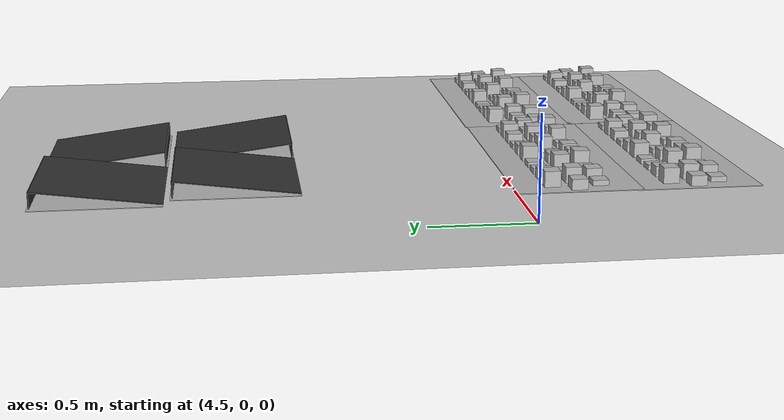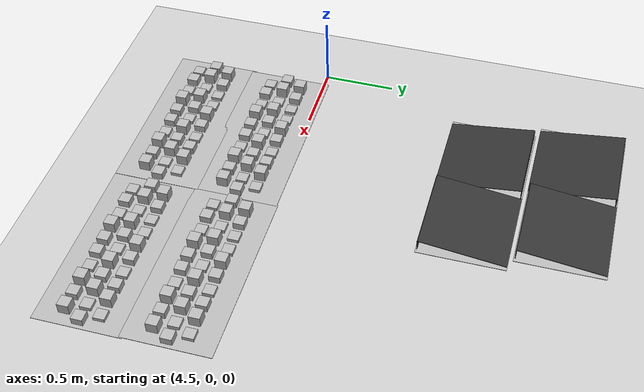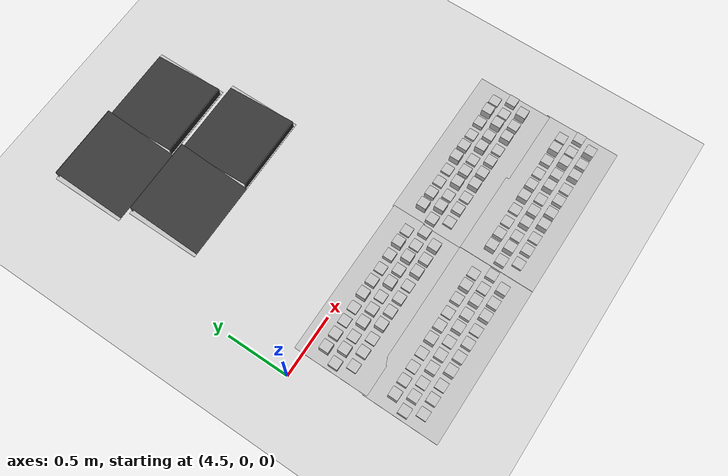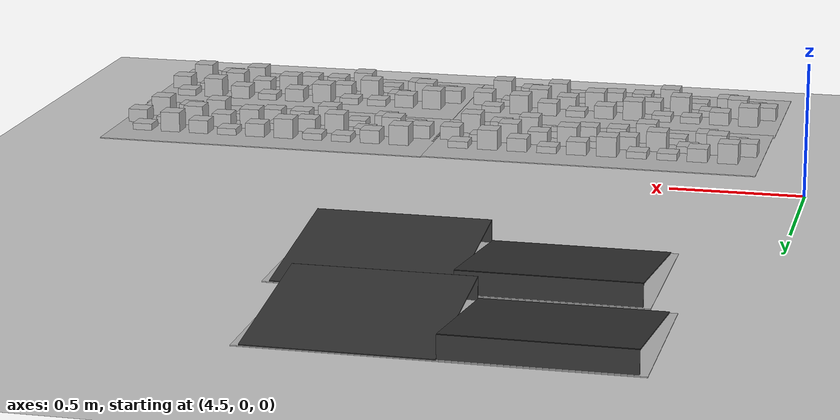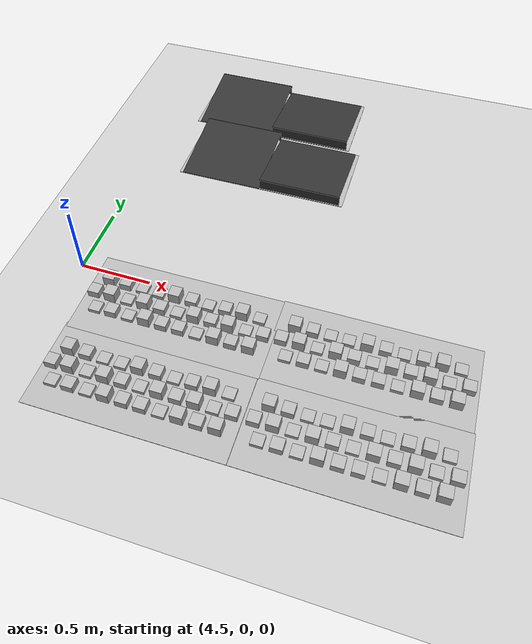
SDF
<sdf version="1.7">
 <world name="default">
  <model name="ground_plane">
   <static>1</static>
   <link name="link">
    <collision name="collision">
     <geometry><plane><normal>0 0 1</normal><size>100 100</size></plane></geometry>
     <surface>
      <contact><collide_bitmask>65535</collide_bitmask></contact>
      <friction><ode><mu>100</mu><mu2>50</mu2></ode></friction>
     </surface>
    </collision>
    <visual name="visual">
     <cast_shadows>0</cast_shadows>
     <geometry><plane><normal>0 0 1</normal><size>100 100</size></plane></geometry>
     <material>
      <script><uri>file://media/materials/scripts/gazebo.material</uri><name>Gazebo/Grey</name></script>
     </material>
    </visual>
   </link>
  </model>
  <model name="frc2016_roughterrain_5">
   <static>1</static>
   <link name="link">
    <visual name="platform">
     <pose>0 0 0.08269 0 -0 0</pose>
     <geometry><box><size>1.27 0.5969 0.003175</size></box></geometry>
    </visual>
    <collision name="platform">
     <pose>0 0 0.08269 0 -0 0</pose>
     <geometry><box><size>1.27 0.5969 0.003175</size></box></geometry>
    </collision>
    <visual name="row1_block1_sm">
     <pose>0.51435 0.1143 0.09698 0 -0 0</pose>
     <geometry><box><size>0.0762 0.0762 0.0254</size></box></geometry>
    </visual>
    <collision name="row1_block1_sm">
     <pose>0.51435 0.1143 0.09698 0 -0 0</pose>
     <geometry><box><size>0.0762 0.0762 0.0254</size></box></geometry>
    </collision>
    <visual name="row1_block2_lg">
     <pose>0.40005 0.1143 0.12238 0 -0 0</pose>
     <geometry><box><size>0.0762 0.0762 0.0762</size></box></geometry>
    </visual>
    <collision name="row1_block2_lg">
     <pose>0.40005 0.1143 0.12238 0 -0 0</pose>
     <geometry><box><size>0.0762 0.0762 0.0762</size></box></geometry>
    </collision>
    <visual name="row1_block3_md">
     <pose>0.28575 0.1143 0.10968 0 -0 0</pose>
     <geometry><box><size>0.0762 0.0762 0.0508</size></box></geometry>
    </visual>
    <collision name="row1_block3_md">
     <pose>0.28575 0.1143 0.10968 0 -0 0</pose>
     <geometry><box><size>0.0762 0.0762 0.0508</size></box></geometry>
    </collision>
    <visual name="row1_block4_sm">
     <pose>0.17145 0.1143 0.09698 0 -0 0</pose>
     <geometry><box><size>0.0762 0.0762 0.0254</size></box></geometry>
    </visual>
    <collision name="row1_block4_sm">
     <pose>0.17145 0.1143 0.09698 0 -0 0</pose>
     <geometry><box><size>0.0762 0.0762 0.0254</size></box></geometry>
    </collision>
    <visual name="row1_block5_md">
     <pose>0.05715 0.1143 0.10968 0 -0 0</pose>
     <geometry><box><size>0.0762 0.0762 0.0508</size></box></geometry>
    </visual>
    <collision name="row1_block5_md">
     <pose>0.05715 0.1143 0.10968 0 -0 0</pose>
     <geometry><box><size>0.0762 0.0762 0.0508</size></box></geometry>
    </collision>
    <visual name="row1_block6_lg">
     <pose>-0.05715 0.1143 0.12238 0 -0 0</pose>
     <geometry><box><size>0.0762 0.0762 0.0762</size></box></geometry>
    </visual>
    <collision name="row1_block6_lg">
     <pose>-0.05715 0.1143 0.12238 0 -0 0</pose>
     <geometry><box><size>0.0762 0.0762 0.0762</size></box></geometry>
    </collision>
    <visual name="row1_block7_sm">
     <pose>-0.17145 0.1143 0.09698 0 -0 0</pose>
     <geometry><box><size>0.0762 0.0762 0.0254</size></box></geometry>
    </visual>
    <collision name="row1_block7_sm">
     <pose>-0.17145 0.1143 0.09698 0 -0 0</pose>
     <geometry><box><size>0.0762 0.0762 0.0254</size></box></geometry>
    </collision>
    <visual name="row1_block8_sm">
     <pose>-0.28575 0.1143 0.09698 0 -0 0</pose>
     <geometry><box><size>0.0762 0.0762 0.0254</size></box></geometry>
    </visual>
    <collision name="row1_block8_sm">
     <pose>-0.28575 0.1143 0.09698 0 -0 0</pose>
     <geometry><box><size>0.0762 0.0762 0.0254</size></box></geometry>
    </collision>
    <visual name="row1_block9_md">
     <pose>-0.40005 0.1143 0.10968 0 -0 0</pose>
     <geometry><box><size>0.0762 0.0762 0.0508</size></box></geometry>
    </visual>
    <collision name="row1_block9_md">
     <pose>-0.40005 0.1143 0.10968 0 -0 0</pose>
     <geometry><box><size>0.0762 0.0762 0.0508</size></box></geometry>
    </collision>
    <visual name="row1_block10_lg">
     <pose>-0.51435 0.1143 0.12238 0 -0 0</pose>
     <geometry><box><size>0.0762 0.0762 0.0762</size></box></geometry>
    </visual>
    <collision name="row1_block10_lg">
     <pose>-0.51435 0.1143 0.12238 0 -0 0</pose>
     <geometry><box><size>0.0762 0.0762 0.0762</size></box></geometry>
    </collision>
    <visual name="row2_block1_md">
     <pose>0.5715 0 0.10968 0 -0 0</pose>
     <geometry><box><size>0.0762 0.0762 0.0508</size></box></geometry>
    </visual>
    <collision name="row2_block1_md">
     <pose>0.5715 0 0.10968 0 -0 0</pose>
     <geometry><box><size>0.0762 0.0762 0.0508</size></box></geometry>
    </collision>
    <visual name="row2_block2_sm">
     <pose>0.4572 0 0.09698 0 -0 0</pose>
     <geometry><box><size>0.0762 0.0762 0.0254</size></box></geometry>
    </visual>
    <collision name="row2_block2_sm">
     <pose>0.4572 0 0.09698 0 -0 0</pose>
     <geometry><box><size>0.0762 0.0762 0.0254</size></box></geometry>
    </collision>
    <visual name="row2_block3_lg">
     <pose>0.3429 0 0.12238 0 -0 0</pose>
     <geometry><box><size>0.0762 0.0762 0.0762</size></box></geometry>
    </visual>
    <collision name="row2_block3_lg">
     <pose>0.3429 0 0.12238 0 -0 0</pose>
     <geometry><box><size>0.0762 0.0762 0.0762</size></box></geometry>
    </collision>
    <visual name="row2_block4_md">
     <pose>0.2286 0 0.10968 0 -0 0</pose>
     <geometry><box><size>0.0762 0.0762 0.0508</size></box></geometry>
    </visual>
    <collision name="row2_block4_md">
     <pose>0.2286 0 0.10968 0 -0 0</pose>
     <geometry><box><size>0.0762 0.0762 0.0508</size></box></geometry>
    </collision>
    <visual name="row2_block5_lg">
     <pose>0.1143 0 0.12238 0 -0 0</pose>
     <geometry><box><size>0.0762 0.0762 0.0762</size></box></geometry>
    </visual>
    <collision name="row2_block5_lg">
     <pose>0.1143 0 0.12238 0 -0 0</pose>
     <geometry><box><size>0.0762 0.0762 0.0762</size></box></geometry>
    </collision>
    <visual name="row2_block6_sm">
     <pose>0 0 0.09698 0 -0 0</pose>
     <geometry><box><size>0.0762 0.0762 0.0254</size></box></geometry>
    </visual>
    <collision name="row2_block6_sm">
     <pose>0 0 0.09698 0 -0 0</pose>
     <geometry><box><size>0.0762 0.0762 0.0254</size></box></geometry>
    </collision>
    <visual name="row2_block7_md">
     <pose>-0.1143 0 0.10968 0 -0 0</pose>
     <geometry><box><size>0.0762 0.0762 0.0508</size></box></geometry>
    </visual>
    <collision name="row2_block7_md">
     <pose>-0.1143 0 0.10968 0 -0 0</pose>
     <geometry><box><size>0.0762 0.0762 0.0508</size></box></geometry>
    </collision>
    <visual name="row2_block8_lg">
     <pose>-0.2286 0 0.12238 0 -0 0</pose>
     <geometry><box><size>0.0762 0.0762 0.0762</size></box></geometry>
    </visual>
    <collision name="row2_block8_lg">
     <pose>-0.2286 0 0.12238 0 -0 0</pose>
     <geometry><box><size>0.0762 0.0762 0.0762</size></box></geometry>
    </collision>
    <visual name="row2_block9_sm">
     <pose>-0.3429 0 0.09698 0 -0 0</pose>
     <geometry><box><size>0.0762 0.0762 0.0254</size></box></geometry>
    </visual>
    <collision name="row2_block9_sm">
     <pose>-0.3429 0 0.09698 0 -0 0</pose>
     <geometry><box><size>0.0762 0.0762 0.0254</size></box></geometry>
    </collision>
    <visual name="row2_block10_lg">
     <pose>-0.4572 0 0.12238 0 -0 0</pose>
     <geometry><box><size>0.0762 0.0762 0.0762</size></box></geometry>
    </visual>
    <collision name="row2_block10_lg">
     <pose>-0.4572 0 0.12238 0 -0 0</pose>
     <geometry><box><size>0.0762 0.0762 0.0762</size></box></geometry>
    </collision>
    <visual name="row2_block11_md">
     <pose>-0.5715 0 0.10968 0 -0 0</pose>
     <geometry><box><size>0.0762 0.0762 0.0508</size></box></geometry>
    </visual>
    <collision name="row2_block11_md">
     <pose>-0.5715 0 0.10968 0 -0 0</pose>
     <geometry><box><size>0.0762 0.0762 0.0508</size></box></geometry>
    </collision>
    <visual name="row3_block1_lg">
     <pose>0.51435 -0.1143 0.12238 0 -0 0</pose>
     <geometry><box><size>0.0762 0.0762 0.0762</size></box></geometry>
    </visual>
    <collision name="row3_block1_lg">
     <pose>0.51435 -0.1143 0.12238 0 -0 0</pose>
     <geometry><box><size>0.0762 0.0762 0.0762</size></box></geometry>
    </collision>
    <visual name="row3_block2_md">
     <pose>0.40005 -0.1143 0.10968 0 -0 0</pose>
     <geometry><box><size>0.0762 0.0762 0.0508</size></box></geometry>
    </visual>
    <collision name="row3_block2_md">
     <pose>0.40005 -0.1143 0.10968 0 -0 0</pose>
     <geometry><box><size>0.0762 0.0762 0.0508</size></box></geometry>
    </collision>
    <visual name="row3_block3_lg">
     <pose>0.28575 -0.1143 0.12238 0 -0 0</pose>
     <geometry><box><size>0.0762 0.0762 0.0762</size></box></geometry>
    </visual>
    <collision name="row3_block3_lg">
     <pose>0.28575 -0.1143 0.12238 0 -0 0</pose>
     <geometry><box><size>0.0762 0.0762 0.0762</size></box></geometry>
    </collision>
    <visual name="row3_block4_sm">
     <pose>0.17145 -0.1143 0.09698 0 -0 0</pose>
     <geometry><box><size>0.0762 0.0762 0.0254</size></box></geometry>
    </visual>
    <collision name="row3_block4_sm">
     <pose>0.17145 -0.1143 0.09698 0 -0 0</pose>
     <geometry><box><size>0.0762 0.0762 0.0254</size></box></geometry>
    </collision>
    <visual name="row3_block5_md">
     <pose>0.05715 -0.1143 0.10968 0 -0 0</pose>
     <geometry><box><size>0.0762 0.0762 0.0508</size></box></geometry>
    </visual>
    <collision name="row3_block5_md">
     <pose>0.05715 -0.1143 0.10968 0 -0 0</pose>
     <geometry><box><size>0.0762 0.0762 0.0508</size></box></geometry>
    </collision>
    <visual name="row3_block6_md">
     <pose>-0.05715 -0.1143 0.10968 0 -0 0</pose>
     <geometry><box><size>0.0762 0.0762 0.0508</size></box></geometry>
    </visual>
    <collision name="row3_block6_md">
     <pose>-0.05715 -0.1143 0.10968 0 -0 0</pose>
     <geometry><box><size>0.0762 0.0762 0.0508</size></box></geometry>
    </collision>
    <visual name="row3_block7_lg">
     <pose>-0.17145 -0.1143 0.12238 0 -0 0</pose>
     <geometry><box><size>0.0762 0.0762 0.0762</size></box></geometry>
    </visual>
    <collision name="row3_block7_lg">
     <pose>-0.17145 -0.1143 0.12238 0 -0 0</pose>
     <geometry><box><size>0.0762 0.0762 0.0762</size></box></geometry>
    </collision>
    <visual name="row3_block8_sm">
     <pose>-0.28575 -0.1143 0.09698 0 -0 0</pose>
     <geometry><box><size>0.0762 0.0762 0.0254</size></box></geometry>
    </visual>
    <collision name="row3_block8_sm">
     <pose>-0.28575 -0.1143 0.09698 0 -0 0</pose>
     <geometry><box><size>0.0762 0.0762 0.0254</size></box></geometry>
    </collision>
    <visual name="row3_block9_md">
     <pose>-0.40005 -0.1143 0.10968 0 -0 0</pose>
     <geometry><box><size>0.0762 0.0762 0.0508</size></box></geometry>
    </visual>
    <collision name="row3_block9_md">
     <pose>-0.40005 -0.1143 0.10968 0 -0 0</pose>
     <geometry><box><size>0.0762 0.0762 0.0508</size></box></geometry>
    </collision>
    <visual name="row3_block10_sm">
     <pose>-0.51435 -0.1143 0.09698 0 -0 0</pose>
     <geometry><box><size>0.0762 0.0762 0.0254</size></box></geometry>
    </visual>
    <collision name="row3_block10_sm">
     <pose>-0.51435 -0.1143 0.09698 0 -0 0</pose>
     <geometry><box><size>0.0762 0.0762 0.0254</size></box></geometry>
    </collision>
   </link>
   <pose>5.31156 -0.239513 0 0 -0 0</pose>
  </model>
  <model name="frc2016_roughterrain_6">
   <static>1</static>
   <link name="link">
    <visual name="platform">
     <pose>0 0 0.08269 0 -0 0</pose>
     <geometry><box><size>1.27 0.5969 0.003175</size></box></geometry>
    </visual>
    <collision name="platform">
     <pose>0 0 0.08269 0 -0 0</pose>
     <geometry><box><size>1.27 0.5969 0.003175</size></box></geometry>
    </collision>
    <visual name="row1_block1_sm">
     <pose>0.51435 0.1143 0.09698 0 -0 0</pose>
     <geometry><box><size>0.0762 0.0762 0.0254</size></box></geometry>
    </visual>
    <collision name="row1_block1_sm">
     <pose>0.51435 0.1143 0.09698 0 -0 0</pose>
     <geometry><box><size>0.0762 0.0762 0.0254</size></box></geometry>
    </collision>
    <visual name="row1_block2_lg">
     <pose>0.40005 0.1143 0.12238 0 -0 0</pose>
     <geometry><box><size>0.0762 0.0762 0.0762</size></box></geometry>
    </visual>
    <collision name="row1_block2_lg">
     <pose>0.40005 0.1143 0.12238 0 -0 0</pose>
     <geometry><box><size>0.0762 0.0762 0.0762</size></box></geometry>
    </collision>
    <visual name="row1_block3_md">
     <pose>0.28575 0.1143 0.10968 0 -0 0</pose>
     <geometry><box><size>0.0762 0.0762 0.0508</size></box></geometry>
    </visual>
    <collision name="row1_block3_md">
     <pose>0.28575 0.1143 0.10968 0 -0 0</pose>
     <geometry><box><size>0.0762 0.0762 0.0508</size></box></geometry>
    </collision>
    <visual name="row1_block4_sm">
     <pose>0.17145 0.1143 0.09698 0 -0 0</pose>
     <geometry><box><size>0.0762 0.0762 0.0254</size></box></geometry>
    </visual>
    <collision name="row1_block4_sm">
     <pose>0.17145 0.1143 0.09698 0 -0 0</pose>
     <geometry><box><size>0.0762 0.0762 0.0254</size></box></geometry>
    </collision>
    <visual name="row1_block5_md">
     <pose>0.05715 0.1143 0.10968 0 -0 0</pose>
     <geometry><box><size>0.0762 0.0762 0.0508</size></box></geometry>
    </visual>
    <collision name="row1_block5_md">
     <pose>0.05715 0.1143 0.10968 0 -0 0</pose>
     <geometry><box><size>0.0762 0.0762 0.0508</size></box></geometry>
    </collision>
    <visual name="row1_block6_lg">
     <pose>-0.05715 0.1143 0.12238 0 -0 0</pose>
     <geometry><box><size>0.0762 0.0762 0.0762</size></box></geometry>
    </visual>
    <collision name="row1_block6_lg">
     <pose>-0.05715 0.1143 0.12238 0 -0 0</pose>
     <geometry><box><size>0.0762 0.0762 0.0762</size></box></geometry>
    </collision>
    <visual name="row1_block7_sm">
     <pose>-0.17145 0.1143 0.09698 0 -0 0</pose>
     <geometry><box><size>0.0762 0.0762 0.0254</size></box></geometry>
    </visual>
    <collision name="row1_block7_sm">
     <pose>-0.17145 0.1143 0.09698 0 -0 0</pose>
     <geometry><box><size>0.0762 0.0762 0.0254</size></box></geometry>
    </collision>
    <visual name="row1_block8_sm">
     <pose>-0.28575 0.1143 0.09698 0 -0 0</pose>
     <geometry><box><size>0.0762 0.0762 0.0254</size></box></geometry>
    </visual>
    <collision name="row1_block8_sm">
     <pose>-0.28575 0.1143 0.09698 0 -0 0</pose>
     <geometry><box><size>0.0762 0.0762 0.0254</size></box></geometry>
    </collision>
    <visual name="row1_block9_md">
     <pose>-0.40005 0.1143 0.10968 0 -0 0</pose>
     <geometry><box><size>0.0762 0.0762 0.0508</size></box></geometry>
    </visual>
    <collision name="row1_block9_md">
     <pose>-0.40005 0.1143 0.10968 0 -0 0</pose>
     <geometry><box><size>0.0762 0.0762 0.0508</size></box></geometry>
    </collision>
    <visual name="row1_block10_lg">
     <pose>-0.51435 0.1143 0.12238 0 -0 0</pose>
     <geometry><box><size>0.0762 0.0762 0.0762</size></box></geometry>
    </visual>
    <collision name="row1_block10_lg">
     <pose>-0.51435 0.1143 0.12238 0 -0 0</pose>
     <geometry><box><size>0.0762 0.0762 0.0762</size></box></geometry>
    </collision>
    <visual name="row2_block1_md">
     <pose>0.5715 0 0.10968 0 -0 0</pose>
     <geometry><box><size>0.0762 0.0762 0.0508</size></box></geometry>
    </visual>
    <collision name="row2_block1_md">
     <pose>0.5715 0 0.10968 0 -0 0</pose>
     <geometry><box><size>0.0762 0.0762 0.0508</size></box></geometry>
    </collision>
    <visual name="row2_block2_sm">
     <pose>0.4572 0 0.09698 0 -0 0</pose>
     <geometry><box><size>0.0762 0.0762 0.0254</size></box></geometry>
    </visual>
    <collision name="row2_block2_sm">
     <pose>0.4572 0 0.09698 0 -0 0</pose>
     <geometry><box><size>0.0762 0.0762 0.0254</size></box></geometry>
    </collision>
    <visual name="row2_block3_lg">
     <pose>0.3429 0 0.12238 0 -0 0</pose>
     <geometry><box><size>0.0762 0.0762 0.0762</size></box></geometry>
    </visual>
    <collision name="row2_block3_lg">
     <pose>0.3429 0 0.12238 0 -0 0</pose>
     <geometry><box><size>0.0762 0.0762 0.0762</size></box></geometry>
    </collision>
    <visual name="row2_block4_md">
     <pose>0.2286 0 0.10968 0 -0 0</pose>
     <geometry><box><size>0.0762 0.0762 0.0508</size></box></geometry>
    </visual>
    <collision name="row2_block4_md">
     <pose>0.2286 0 0.10968 0 -0 0</pose>
     <geometry><box><size>0.0762 0.0762 0.0508</size></box></geometry>
    </collision>
    <visual name="row2_block5_lg">
     <pose>0.1143 0 0.12238 0 -0 0</pose>
     <geometry><box><size>0.0762 0.0762 0.0762</size></box></geometry>
    </visual>
    <collision name="row2_block5_lg">
     <pose>0.1143 0 0.12238 0 -0 0</pose>
     <geometry><box><size>0.0762 0.0762 0.0762</size></box></geometry>
    </collision>
    <visual name="row2_block6_sm">
     <pose>0 0 0.09698 0 -0 0</pose>
     <geometry><box><size>0.0762 0.0762 0.0254</size></box></geometry>
    </visual>
    <collision name="row2_block6_sm">
     <pose>0 0 0.09698 0 -0 0</pose>
     <geometry><box><size>0.0762 0.0762 0.0254</size></box></geometry>
    </collision>
    <visual name="row2_block7_md">
     <pose>-0.1143 0 0.10968 0 -0 0</pose>
     <geometry><box><size>0.0762 0.0762 0.0508</size></box></geometry>
    </visual>
    <collision name="row2_block7_md">
     <pose>-0.1143 0 0.10968 0 -0 0</pose>
     <geometry><box><size>0.0762 0.0762 0.0508</size></box></geometry>
    </collision>
    <visual name="row2_block8_lg">
     <pose>-0.2286 0 0.12238 0 -0 0</pose>
     <geometry><box><size>0.0762 0.0762 0.0762</size></box></geometry>
    </visual>
    <collision name="row2_block8_lg">
     <pose>-0.2286 0 0.12238 0 -0 0</pose>
     <geometry><box><size>0.0762 0.0762 0.0762</size></box></geometry>
    </collision>
    <visual name="row2_block9_sm">
     <pose>-0.3429 0 0.09698 0 -0 0</pose>
     <geometry><box><size>0.0762 0.0762 0.0254</size></box></geometry>
    </visual>
    <collision name="row2_block9_sm">
     <pose>-0.3429 0 0.09698 0 -0 0</pose>
     <geometry><box><size>0.0762 0.0762 0.0254</size></box></geometry>
    </collision>
    <visual name="row2_block10_lg">
     <pose>-0.4572 0 0.12238 0 -0 0</pose>
     <geometry><box><size>0.0762 0.0762 0.0762</size></box></geometry>
    </visual>
    <collision name="row2_block10_lg">
     <pose>-0.4572 0 0.12238 0 -0 0</pose>
     <geometry><box><size>0.0762 0.0762 0.0762</size></box></geometry>
    </collision>
    <visual name="row2_block11_md">
     <pose>-0.5715 0 0.10968 0 -0 0</pose>
     <geometry><box><size>0.0762 0.0762 0.0508</size></box></geometry>
    </visual>
    <collision name="row2_block11_md">
     <pose>-0.5715 0 0.10968 0 -0 0</pose>
     <geometry><box><size>0.0762 0.0762 0.0508</size></box></geometry>
    </collision>
    <visual name="row3_block1_lg">
     <pose>0.51435 -0.1143 0.12238 0 -0 0</pose>
     <geometry><box><size>0.0762 0.0762 0.0762</size></box></geometry>
    </visual>
    <collision name="row3_block1_lg">
     <pose>0.51435 -0.1143 0.12238 0 -0 0</pose>
     <geometry><box><size>0.0762 0.0762 0.0762</size></box></geometry>
    </collision>
    <visual name="row3_block2_md">
     <pose>0.40005 -0.1143 0.10968 0 -0 0</pose>
     <geometry><box><size>0.0762 0.0762 0.0508</size></box></geometry>
    </visual>
    <collision name="row3_block2_md">
     <pose>0.40005 -0.1143 0.10968 0 -0 0</pose>
     <geometry><box><size>0.0762 0.0762 0.0508</size></box></geometry>
    </collision>
    <visual name="row3_block3_lg">
     <pose>0.28575 -0.1143 0.12238 0 -0 0</pose>
     <geometry><box><size>0.0762 0.0762 0.0762</size></box></geometry>
    </visual>
    <collision name="row3_block3_lg">
     <pose>0.28575 -0.1143 0.12238 0 -0 0</pose>
     <geometry><box><size>0.0762 0.0762 0.0762</size></box></geometry>
    </collision>
    <visual name="row3_block4_sm">
     <pose>0.17145 -0.1143 0.09698 0 -0 0</pose>
     <geometry><box><size>0.0762 0.0762 0.0254</size></box></geometry>
    </visual>
    <collision name="row3_block4_sm">
     <pose>0.17145 -0.1143 0.09698 0 -0 0</pose>
     <geometry><box><size>0.0762 0.0762 0.0254</size></box></geometry>
    </collision>
    <visual name="row3_block5_md">
     <pose>0.05715 -0.1143 0.10968 0 -0 0</pose>
     <geometry><box><size>0.0762 0.0762 0.0508</size></box></geometry>
    </visual>
    <collision name="row3_block5_md">
     <pose>0.05715 -0.1143 0.10968 0 -0 0</pose>
     <geometry><box><size>0.0762 0.0762 0.0508</size></box></geometry>
    </collision>
    <visual name="row3_block6_md">
     <pose>-0.05715 -0.1143 0.10968 0 -0 0</pose>
     <geometry><box><size>0.0762 0.0762 0.0508</size></box></geometry>
    </visual>
    <collision name="row3_block6_md">
     <pose>-0.05715 -0.1143 0.10968 0 -0 0</pose>
     <geometry><box><size>0.0762 0.0762 0.0508</size></box></geometry>
    </collision>
    <visual name="row3_block7_lg">
     <pose>-0.17145 -0.1143 0.12238 0 -0 0</pose>
     <geometry><box><size>0.0762 0.0762 0.0762</size></box></geometry>
    </visual>
    <collision name="row3_block7_lg">
     <pose>-0.17145 -0.1143 0.12238 0 -0 0</pose>
     <geometry><box><size>0.0762 0.0762 0.0762</size></box></geometry>
    </collision>
    <visual name="row3_block8_sm">
     <pose>-0.28575 -0.1143 0.09698 0 -0 0</pose>
     <geometry><box><size>0.0762 0.0762 0.0254</size></box></geometry>
    </visual>
    <collision name="row3_block8_sm">
     <pose>-0.28575 -0.1143 0.09698 0 -0 0</pose>
     <geometry><box><size>0.0762 0.0762 0.0254</size></box></geometry>
    </collision>
    <visual name="row3_block9_md">
     <pose>-0.40005 -0.1143 0.10968 0 -0 0</pose>
     <geometry><box><size>0.0762 0.0762 0.0508</size></box></geometry>
    </visual>
    <collision name="row3_block9_md">
     <pose>-0.40005 -0.1143 0.10968 0 -0 0</pose>
     <geometry><box><size>0.0762 0.0762 0.0508</size></box></geometry>
    </collision>
    <visual name="row3_block10_sm">
     <pose>-0.51435 -0.1143 0.09698 0 -0 0</pose>
     <geometry><box><size>0.0762 0.0762 0.0254</size></box></geometry>
    </visual>
    <collision name="row3_block10_sm">
     <pose>-0.51435 -0.1143 0.09698 0 -0 0</pose>
     <geometry><box><size>0.0762 0.0762 0.0254</size></box></geometry>
    </collision>
   </link>
   <pose>5.30482 -0.804148 0 0 -0 0</pose>
  </model>
  <model name="frc2016_roughterrain_7">
   <static>1</static>
   <link name="link">
    <visual name="platform">
     <pose>0 0 0.08269 0 -0 0</pose>
     <geometry><box><size>1.27 0.5969 0.003175</size></box></geometry>
    </visual>
    <collision name="platform">
     <pose>0 0 0.08269 0 -0 0</pose>
     <geometry><box><size>1.27 0.5969 0.003175</size></box></geometry>
    </collision>
    <visual name="row1_block1_sm">
     <pose>0.51435 0.1143 0.09698 0 -0 0</pose>
     <geometry><box><size>0.0762 0.0762 0.0254</size></box></geometry>
    </visual>
    <collision name="row1_block1_sm">
     <pose>0.51435 0.1143 0.09698 0 -0 0</pose>
     <geometry><box><size>0.0762 0.0762 0.0254</size></box></geometry>
    </collision>
    <visual name="row1_block2_lg">
     <pose>0.40005 0.1143 0.12238 0 -0 0</pose>
     <geometry><box><size>0.0762 0.0762 0.0762</size></box></geometry>
    </visual>
    <collision name="row1_block2_lg">
     <pose>0.40005 0.1143 0.12238 0 -0 0</pose>
     <geometry><box><size>0.0762 0.0762 0.0762</size></box></geometry>
    </collision>
    <visual name="row1_block3_md">
     <pose>0.28575 0.1143 0.10968 0 -0 0</pose>
     <geometry><box><size>0.0762 0.0762 0.0508</size></box></geometry>
    </visual>
    <collision name="row1_block3_md">
     <pose>0.28575 0.1143 0.10968 0 -0 0</pose>
     <geometry><box><size>0.0762 0.0762 0.0508</size></box></geometry>
    </collision>
    <visual name="row1_block4_sm">
     <pose>0.17145 0.1143 0.09698 0 -0 0</pose>
     <geometry><box><size>0.0762 0.0762 0.0254</size></box></geometry>
    </visual>
    <collision name="row1_block4_sm">
     <pose>0.17145 0.1143 0.09698 0 -0 0</pose>
     <geometry><box><size>0.0762 0.0762 0.0254</size></box></geometry>
    </collision>
    <visual name="row1_block5_md">
     <pose>0.05715 0.1143 0.10968 0 -0 0</pose>
     <geometry><box><size>0.0762 0.0762 0.0508</size></box></geometry>
    </visual>
    <collision name="row1_block5_md">
     <pose>0.05715 0.1143 0.10968 0 -0 0</pose>
     <geometry><box><size>0.0762 0.0762 0.0508</size></box></geometry>
    </collision>
    <visual name="row1_block6_lg">
     <pose>-0.05715 0.1143 0.12238 0 -0 0</pose>
     <geometry><box><size>0.0762 0.0762 0.0762</size></box></geometry>
    </visual>
    <collision name="row1_block6_lg">
     <pose>-0.05715 0.1143 0.12238 0 -0 0</pose>
     <geometry><box><size>0.0762 0.0762 0.0762</size></box></geometry>
    </collision>
    <visual name="row1_block7_sm">
     <pose>-0.17145 0.1143 0.09698 0 -0 0</pose>
     <geometry><box><size>0.0762 0.0762 0.0254</size></box></geometry>
    </visual>
    <collision name="row1_block7_sm">
     <pose>-0.17145 0.1143 0.09698 0 -0 0</pose>
     <geometry><box><size>0.0762 0.0762 0.0254</size></box></geometry>
    </collision>
    <visual name="row1_block8_sm">
     <pose>-0.28575 0.1143 0.09698 0 -0 0</pose>
     <geometry><box><size>0.0762 0.0762 0.0254</size></box></geometry>
    </visual>
    <collision name="row1_block8_sm">
     <pose>-0.28575 0.1143 0.09698 0 -0 0</pose>
     <geometry><box><size>0.0762 0.0762 0.0254</size></box></geometry>
    </collision>
    <visual name="row1_block9_md">
     <pose>-0.40005 0.1143 0.10968 0 -0 0</pose>
     <geometry><box><size>0.0762 0.0762 0.0508</size></box></geometry>
    </visual>
    <collision name="row1_block9_md">
     <pose>-0.40005 0.1143 0.10968 0 -0 0</pose>
     <geometry><box><size>0.0762 0.0762 0.0508</size></box></geometry>
    </collision>
    <visual name="row1_block10_lg">
     <pose>-0.51435 0.1143 0.12238 0 -0 0</pose>
     <geometry><box><size>0.0762 0.0762 0.0762</size></box></geometry>
    </visual>
    <collision name="row1_block10_lg">
     <pose>-0.51435 0.1143 0.12238 0 -0 0</pose>
     <geometry><box><size>0.0762 0.0762 0.0762</size></box></geometry>
    </collision>
    <visual name="row2_block1_md">
     <pose>0.5715 0 0.10968 0 -0 0</pose>
     <geometry><box><size>0.0762 0.0762 0.0508</size></box></geometry>
    </visual>
    <collision name="row2_block1_md">
     <pose>0.5715 0 0.10968 0 -0 0</pose>
     <geometry><box><size>0.0762 0.0762 0.0508</size></box></geometry>
    </collision>
    <visual name="row2_block2_sm">
     <pose>0.4572 0 0.09698 0 -0 0</pose>
     <geometry><box><size>0.0762 0.0762 0.0254</size></box></geometry>
    </visual>
    <collision name="row2_block2_sm">
     <pose>0.4572 0 0.09698 0 -0 0</pose>
     <geometry><box><size>0.0762 0.0762 0.0254</size></box></geometry>
    </collision>
    <visual name="row2_block3_lg">
     <pose>0.3429 0 0.12238 0 -0 0</pose>
     <geometry><box><size>0.0762 0.0762 0.0762</size></box></geometry>
    </visual>
    <collision name="row2_block3_lg">
     <pose>0.3429 0 0.12238 0 -0 0</pose>
     <geometry><box><size>0.0762 0.0762 0.0762</size></box></geometry>
    </collision>
    <visual name="row2_block4_md">
     <pose>0.2286 0 0.10968 0 -0 0</pose>
     <geometry><box><size>0.0762 0.0762 0.0508</size></box></geometry>
    </visual>
    <collision name="row2_block4_md">
     <pose>0.2286 0 0.10968 0 -0 0</pose>
     <geometry><box><size>0.0762 0.0762 0.0508</size></box></geometry>
    </collision>
    <visual name="row2_block5_lg">
     <pose>0.1143 0 0.12238 0 -0 0</pose>
     <geometry><box><size>0.0762 0.0762 0.0762</size></box></geometry>
    </visual>
    <collision name="row2_block5_lg">
     <pose>0.1143 0 0.12238 0 -0 0</pose>
     <geometry><box><size>0.0762 0.0762 0.0762</size></box></geometry>
    </collision>
    <visual name="row2_block6_sm">
     <pose>0 0 0.09698 0 -0 0</pose>
     <geometry><box><size>0.0762 0.0762 0.0254</size></box></geometry>
    </visual>
    <collision name="row2_block6_sm">
     <pose>0 0 0.09698 0 -0 0</pose>
     <geometry><box><size>0.0762 0.0762 0.0254</size></box></geometry>
    </collision>
    <visual name="row2_block7_md">
     <pose>-0.1143 0 0.10968 0 -0 0</pose>
     <geometry><box><size>0.0762 0.0762 0.0508</size></box></geometry>
    </visual>
    <collision name="row2_block7_md">
     <pose>-0.1143 0 0.10968 0 -0 0</pose>
     <geometry><box><size>0.0762 0.0762 0.0508</size></box></geometry>
    </collision>
    <visual name="row2_block8_lg">
     <pose>-0.2286 0 0.12238 0 -0 0</pose>
     <geometry><box><size>0.0762 0.0762 0.0762</size></box></geometry>
    </visual>
    <collision name="row2_block8_lg">
     <pose>-0.2286 0 0.12238 0 -0 0</pose>
     <geometry><box><size>0.0762 0.0762 0.0762</size></box></geometry>
    </collision>
    <visual name="row2_block9_sm">
     <pose>-0.3429 0 0.09698 0 -0 0</pose>
     <geometry><box><size>0.0762 0.0762 0.0254</size></box></geometry>
    </visual>
    <collision name="row2_block9_sm">
     <pose>-0.3429 0 0.09698 0 -0 0</pose>
     <geometry><box><size>0.0762 0.0762 0.0254</size></box></geometry>
    </collision>
    <visual name="row2_block10_lg">
     <pose>-0.4572 0 0.12238 0 -0 0</pose>
     <geometry><box><size>0.0762 0.0762 0.0762</size></box></geometry>
    </visual>
    <collision name="row2_block10_lg">
     <pose>-0.4572 0 0.12238 0 -0 0</pose>
     <geometry><box><size>0.0762 0.0762 0.0762</size></box></geometry>
    </collision>
    <visual name="row2_block11_md">
     <pose>-0.5715 0 0.10968 0 -0 0</pose>
     <geometry><box><size>0.0762 0.0762 0.0508</size></box></geometry>
    </visual>
    <collision name="row2_block11_md">
     <pose>-0.5715 0 0.10968 0 -0 0</pose>
     <geometry><box><size>0.0762 0.0762 0.0508</size></box></geometry>
    </collision>
    <visual name="row3_block1_lg">
     <pose>0.51435 -0.1143 0.12238 0 -0 0</pose>
     <geometry><box><size>0.0762 0.0762 0.0762</size></box></geometry>
    </visual>
    <collision name="row3_block1_lg">
     <pose>0.51435 -0.1143 0.12238 0 -0 0</pose>
     <geometry><box><size>0.0762 0.0762 0.0762</size></box></geometry>
    </collision>
    <visual name="row3_block2_md">
     <pose>0.40005 -0.1143 0.10968 0 -0 0</pose>
     <geometry><box><size>0.0762 0.0762 0.0508</size></box></geometry>
    </visual>
    <collision name="row3_block2_md">
     <pose>0.40005 -0.1143 0.10968 0 -0 0</pose>
     <geometry><box><size>0.0762 0.0762 0.0508</size></box></geometry>
    </collision>
    <visual name="row3_block3_lg">
     <pose>0.28575 -0.1143 0.12238 0 -0 0</pose>
     <geometry><box><size>0.0762 0.0762 0.0762</size></box></geometry>
    </visual>
    <collision name="row3_block3_lg">
     <pose>0.28575 -0.1143 0.12238 0 -0 0</pose>
     <geometry><box><size>0.0762 0.0762 0.0762</size></box></geometry>
    </collision>
    <visual name="row3_block4_sm">
     <pose>0.17145 -0.1143 0.09698 0 -0 0</pose>
     <geometry><box><size>0.0762 0.0762 0.0254</size></box></geometry>
    </visual>
    <collision name="row3_block4_sm">
     <pose>0.17145 -0.1143 0.09698 0 -0 0</pose>
     <geometry><box><size>0.0762 0.0762 0.0254</size></box></geometry>
    </collision>
    <visual name="row3_block5_md">
     <pose>0.05715 -0.1143 0.10968 0 -0 0</pose>
     <geometry><box><size>0.0762 0.0762 0.0508</size></box></geometry>
    </visual>
    <collision name="row3_block5_md">
     <pose>0.05715 -0.1143 0.10968 0 -0 0</pose>
     <geometry><box><size>0.0762 0.0762 0.0508</size></box></geometry>
    </collision>
    <visual name="row3_block6_md">
     <pose>-0.05715 -0.1143 0.10968 0 -0 0</pose>
     <geometry><box><size>0.0762 0.0762 0.0508</size></box></geometry>
    </visual>
    <collision name="row3_block6_md">
     <pose>-0.05715 -0.1143 0.10968 0 -0 0</pose>
     <geometry><box><size>0.0762 0.0762 0.0508</size></box></geometry>
    </collision>
    <visual name="row3_block7_lg">
     <pose>-0.17145 -0.1143 0.12238 0 -0 0</pose>
     <geometry><box><size>0.0762 0.0762 0.0762</size></box></geometry>
    </visual>
    <collision name="row3_block7_lg">
     <pose>-0.17145 -0.1143 0.12238 0 -0 0</pose>
     <geometry><box><size>0.0762 0.0762 0.0762</size></box></geometry>
    </collision>
    <visual name="row3_block8_sm">
     <pose>-0.28575 -0.1143 0.09698 0 -0 0</pose>
     <geometry><box><size>0.0762 0.0762 0.0254</size></box></geometry>
    </visual>
    <collision name="row3_block8_sm">
     <pose>-0.28575 -0.1143 0.09698 0 -0 0</pose>
     <geometry><box><size>0.0762 0.0762 0.0254</size></box></geometry>
    </collision>
    <visual name="row3_block9_md">
     <pose>-0.40005 -0.1143 0.10968 0 -0 0</pose>
     <geometry><box><size>0.0762 0.0762 0.0508</size></box></geometry>
    </visual>
    <collision name="row3_block9_md">
     <pose>-0.40005 -0.1143 0.10968 0 -0 0</pose>
     <geometry><box><size>0.0762 0.0762 0.0508</size></box></geometry>
    </collision>
    <visual name="row3_block10_sm">
     <pose>-0.51435 -0.1143 0.09698 0 -0 0</pose>
     <geometry><box><size>0.0762 0.0762 0.0254</size></box></geometry>
    </visual>
    <collision name="row3_block10_sm">
     <pose>-0.51435 -0.1143 0.09698 0 -0 0</pose>
     <geometry><box><size>0.0762 0.0762 0.0254</size></box></geometry>
    </collision>
   </link>
   <pose>6.56957 -0.231852 0 0 -0 0</pose>
  </model>
  <model name="frc2016_roughterrain_8">
   <static>1</static>
   <link name="link">
    <visual name="platform">
     <pose>0 0 0.08269 0 -0 0</pose>
     <geometry><box><size>1.27 0.5969 0.003175</size></box></geometry>
    </visual>
    <collision name="platform">
     <pose>0 0 0.08269 0 -0 0</pose>
     <geometry><box><size>1.27 0.5969 0.003175</size></box></geometry>
    </collision>
    <visual name="row1_block1_sm">
     <pose>0.51435 0.1143 0.09698 0 -0 0</pose>
     <geometry><box><size>0.0762 0.0762 0.0254</size></box></geometry>
    </visual>
    <collision name="row1_block1_sm">
     <pose>0.51435 0.1143 0.09698 0 -0 0</pose>
     <geometry><box><size>0.0762 0.0762 0.0254</size></box></geometry>
    </collision>
    <visual name="row1_block2_lg">
     <pose>0.40005 0.1143 0.12238 0 -0 0</pose>
     <geometry><box><size>0.0762 0.0762 0.0762</size></box></geometry>
    </visual>
    <collision name="row1_block2_lg">
     <pose>0.40005 0.1143 0.12238 0 -0 0</pose>
     <geometry><box><size>0.0762 0.0762 0.0762</size></box></geometry>
    </collision>
    <visual name="row1_block3_md">
     <pose>0.28575 0.1143 0.10968 0 -0 0</pose>
     <geometry><box><size>0.0762 0.0762 0.0508</size></box></geometry>
    </visual>
    <collision name="row1_block3_md">
     <pose>0.28575 0.1143 0.10968 0 -0 0</pose>
     <geometry><box><size>0.0762 0.0762 0.0508</size></box></geometry>
    </collision>
    <visual name="row1_block4_sm">
     <pose>0.17145 0.1143 0.09698 0 -0 0</pose>
     <geometry><box><size>0.0762 0.0762 0.0254</size></box></geometry>
    </visual>
    <collision name="row1_block4_sm">
     <pose>0.17145 0.1143 0.09698 0 -0 0</pose>
     <geometry><box><size>0.0762 0.0762 0.0254</size></box></geometry>
    </collision>
    <visual name="row1_block5_md">
     <pose>0.05715 0.1143 0.10968 0 -0 0</pose>
     <geometry><box><size>0.0762 0.0762 0.0508</size></box></geometry>
    </visual>
    <collision name="row1_block5_md">
     <pose>0.05715 0.1143 0.10968 0 -0 0</pose>
     <geometry><box><size>0.0762 0.0762 0.0508</size></box></geometry>
    </collision>
    <visual name="row1_block6_lg">
     <pose>-0.05715 0.1143 0.12238 0 -0 0</pose>
     <geometry><box><size>0.0762 0.0762 0.0762</size></box></geometry>
    </visual>
    <collision name="row1_block6_lg">
     <pose>-0.05715 0.1143 0.12238 0 -0 0</pose>
     <geometry><box><size>0.0762 0.0762 0.0762</size></box></geometry>
    </collision>
    <visual name="row1_block7_sm">
     <pose>-0.17145 0.1143 0.09698 0 -0 0</pose>
     <geometry><box><size>0.0762 0.0762 0.0254</size></box></geometry>
    </visual>
    <collision name="row1_block7_sm">
     <pose>-0.17145 0.1143 0.09698 0 -0 0</pose>
     <geometry><box><size>0.0762 0.0762 0.0254</size></box></geometry>
    </collision>
    <visual name="row1_block8_sm">
     <pose>-0.28575 0.1143 0.09698 0 -0 0</pose>
     <geometry><box><size>0.0762 0.0762 0.0254</size></box></geometry>
    </visual>
    <collision name="row1_block8_sm">
     <pose>-0.28575 0.1143 0.09698 0 -0 0</pose>
     <geometry><box><size>0.0762 0.0762 0.0254</size></box></geometry>
    </collision>
    <visual name="row1_block9_md">
     <pose>-0.40005 0.1143 0.10968 0 -0 0</pose>
     <geometry><box><size>0.0762 0.0762 0.0508</size></box></geometry>
    </visual>
    <collision name="row1_block9_md">
     <pose>-0.40005 0.1143 0.10968 0 -0 0</pose>
     <geometry><box><size>0.0762 0.0762 0.0508</size></box></geometry>
    </collision>
    <visual name="row1_block10_lg">
     <pose>-0.51435 0.1143 0.12238 0 -0 0</pose>
     <geometry><box><size>0.0762 0.0762 0.0762</size></box></geometry>
    </visual>
    <collision name="row1_block10_lg">
     <pose>-0.51435 0.1143 0.12238 0 -0 0</pose>
     <geometry><box><size>0.0762 0.0762 0.0762</size></box></geometry>
    </collision>
    <visual name="row2_block1_md">
     <pose>0.5715 0 0.10968 0 -0 0</pose>
     <geometry><box><size>0.0762 0.0762 0.0508</size></box></geometry>
    </visual>
    <collision name="row2_block1_md">
     <pose>0.5715 0 0.10968 0 -0 0</pose>
     <geometry><box><size>0.0762 0.0762 0.0508</size></box></geometry>
    </collision>
    <visual name="row2_block2_sm">
     <pose>0.4572 0 0.09698 0 -0 0</pose>
     <geometry><box><size>0.0762 0.0762 0.0254</size></box></geometry>
    </visual>
    <collision name="row2_block2_sm">
     <pose>0.4572 0 0.09698 0 -0 0</pose>
     <geometry><box><size>0.0762 0.0762 0.0254</size></box></geometry>
    </collision>
    <visual name="row2_block3_lg">
     <pose>0.3429 0 0.12238 0 -0 0</pose>
     <geometry><box><size>0.0762 0.0762 0.0762</size></box></geometry>
    </visual>
    <collision name="row2_block3_lg">
     <pose>0.3429 0 0.12238 0 -0 0</pose>
     <geometry><box><size>0.0762 0.0762 0.0762</size></box></geometry>
    </collision>
    <visual name="row2_block4_md">
     <pose>0.2286 0 0.10968 0 -0 0</pose>
     <geometry><box><size>0.0762 0.0762 0.0508</size></box></geometry>
    </visual>
    <collision name="row2_block4_md">
     <pose>0.2286 0 0.10968 0 -0 0</pose>
     <geometry><box><size>0.0762 0.0762 0.0508</size></box></geometry>
    </collision>
    <visual name="row2_block5_lg">
     <pose>0.1143 0 0.12238 0 -0 0</pose>
     <geometry><box><size>0.0762 0.0762 0.0762</size></box></geometry>
    </visual>
    <collision name="row2_block5_lg">
     <pose>0.1143 0 0.12238 0 -0 0</pose>
     <geometry><box><size>0.0762 0.0762 0.0762</size></box></geometry>
    </collision>
    <visual name="row2_block6_sm">
     <pose>0 0 0.09698 0 -0 0</pose>
     <geometry><box><size>0.0762 0.0762 0.0254</size></box></geometry>
    </visual>
    <collision name="row2_block6_sm">
     <pose>0 0 0.09698 0 -0 0</pose>
     <geometry><box><size>0.0762 0.0762 0.0254</size></box></geometry>
    </collision>
    <visual name="row2_block7_md">
     <pose>-0.1143 0 0.10968 0 -0 0</pose>
     <geometry><box><size>0.0762 0.0762 0.0508</size></box></geometry>
    </visual>
    <collision name="row2_block7_md">
     <pose>-0.1143 0 0.10968 0 -0 0</pose>
     <geometry><box><size>0.0762 0.0762 0.0508</size></box></geometry>
    </collision>
    <visual name="row2_block8_lg">
     <pose>-0.2286 0 0.12238 0 -0 0</pose>
     <geometry><box><size>0.0762 0.0762 0.0762</size></box></geometry>
    </visual>
    <collision name="row2_block8_lg">
     <pose>-0.2286 0 0.12238 0 -0 0</pose>
     <geometry><box><size>0.0762 0.0762 0.0762</size></box></geometry>
    </collision>
    <visual name="row2_block9_sm">
     <pose>-0.3429 0 0.09698 0 -0 0</pose>
     <geometry><box><size>0.0762 0.0762 0.0254</size></box></geometry>
    </visual>
    <collision name="row2_block9_sm">
     <pose>-0.3429 0 0.09698 0 -0 0</pose>
     <geometry><box><size>0.0762 0.0762 0.0254</size></box></geometry>
    </collision>
    <visual name="row2_block10_lg">
     <pose>-0.4572 0 0.12238 0 -0 0</pose>
     <geometry><box><size>0.0762 0.0762 0.0762</size></box></geometry>
    </visual>
    <collision name="row2_block10_lg">
     <pose>-0.4572 0 0.12238 0 -0 0</pose>
     <geometry><box><size>0.0762 0.0762 0.0762</size></box></geometry>
    </collision>
    <visual name="row2_block11_md">
     <pose>-0.5715 0 0.10968 0 -0 0</pose>
     <geometry><box><size>0.0762 0.0762 0.0508</size></box></geometry>
    </visual>
    <collision name="row2_block11_md">
     <pose>-0.5715 0 0.10968 0 -0 0</pose>
     <geometry><box><size>0.0762 0.0762 0.0508</size></box></geometry>
    </collision>
    <visual name="row3_block1_lg">
     <pose>0.51435 -0.1143 0.12238 0 -0 0</pose>
     <geometry><box><size>0.0762 0.0762 0.0762</size></box></geometry>
    </visual>
    <collision name="row3_block1_lg">
     <pose>0.51435 -0.1143 0.12238 0 -0 0</pose>
     <geometry><box><size>0.0762 0.0762 0.0762</size></box></geometry>
    </collision>
    <visual name="row3_block2_md">
     <pose>0.40005 -0.1143 0.10968 0 -0 0</pose>
     <geometry><box><size>0.0762 0.0762 0.0508</size></box></geometry>
    </visual>
    <collision name="row3_block2_md">
     <pose>0.40005 -0.1143 0.10968 0 -0 0</pose>
     <geometry><box><size>0.0762 0.0762 0.0508</size></box></geometry>
    </collision>
    <visual name="row3_block3_lg">
     <pose>0.28575 -0.1143 0.12238 0 -0 0</pose>
     <geometry><box><size>0.0762 0.0762 0.0762</size></box></geometry>
    </visual>
    <collision name="row3_block3_lg">
     <pose>0.28575 -0.1143 0.12238 0 -0 0</pose>
     <geometry><box><size>0.0762 0.0762 0.0762</size></box></geometry>
    </collision>
    <visual name="row3_block4_sm">
     <pose>0.17145 -0.1143 0.09698 0 -0 0</pose>
     <geometry><box><size>0.0762 0.0762 0.0254</size></box></geometry>
    </visual>
    <collision name="row3_block4_sm">
     <pose>0.17145 -0.1143 0.09698 0 -0 0</pose>
     <geometry><box><size>0.0762 0.0762 0.0254</size></box></geometry>
    </collision>
    <visual name="row3_block5_md">
     <pose>0.05715 -0.1143 0.10968 0 -0 0</pose>
     <geometry><box><size>0.0762 0.0762 0.0508</size></box></geometry>
    </visual>
    <collision name="row3_block5_md">
     <pose>0.05715 -0.1143 0.10968 0 -0 0</pose>
     <geometry><box><size>0.0762 0.0762 0.0508</size></box></geometry>
    </collision>
    <visual name="row3_block6_md">
     <pose>-0.05715 -0.1143 0.10968 0 -0 0</pose>
     <geometry><box><size>0.0762 0.0762 0.0508</size></box></geometry>
    </visual>
    <collision name="row3_block6_md">
     <pose>-0.05715 -0.1143 0.10968 0 -0 0</pose>
     <geometry><box><size>0.0762 0.0762 0.0508</size></box></geometry>
    </collision>
    <visual name="row3_block7_lg">
     <pose>-0.17145 -0.1143 0.12238 0 -0 0</pose>
     <geometry><box><size>0.0762 0.0762 0.0762</size></box></geometry>
    </visual>
    <collision name="row3_block7_lg">
     <pose>-0.17145 -0.1143 0.12238 0 -0 0</pose>
     <geometry><box><size>0.0762 0.0762 0.0762</size></box></geometry>
    </collision>
    <visual name="row3_block8_sm">
     <pose>-0.28575 -0.1143 0.09698 0 -0 0</pose>
     <geometry><box><size>0.0762 0.0762 0.0254</size></box></geometry>
    </visual>
    <collision name="row3_block8_sm">
     <pose>-0.28575 -0.1143 0.09698 0 -0 0</pose>
     <geometry><box><size>0.0762 0.0762 0.0254</size></box></geometry>
    </collision>
    <visual name="row3_block9_md">
     <pose>-0.40005 -0.1143 0.10968 0 -0 0</pose>
     <geometry><box><size>0.0762 0.0762 0.0508</size></box></geometry>
    </visual>
    <collision name="row3_block9_md">
     <pose>-0.40005 -0.1143 0.10968 0 -0 0</pose>
     <geometry><box><size>0.0762 0.0762 0.0508</size></box></geometry>
    </collision>
    <visual name="row3_block10_sm">
     <pose>-0.51435 -0.1143 0.09698 0 -0 0</pose>
     <geometry><box><size>0.0762 0.0762 0.0254</size></box></geometry>
    </visual>
    <collision name="row3_block10_sm">
     <pose>-0.51435 -0.1143 0.09698 0 -0 0</pose>
     <geometry><box><size>0.0762 0.0762 0.0254</size></box></geometry>
    </collision>
   </link>
   <pose>6.57668 -0.804107 0 0 -0 0</pose>
  </model>
  <model name="frc2016_ramparts_5">
   <static>1</static>
   <link name="link">
    <visual name="platform">
     <pose>0 0 0.06967 0 -0 0</pose>
     <geometry><box><size>1.27 0.5969 0.003175</size></box></geometry>
    </visual>
    <collision name="platform">
     <pose>0 0 0.06967 0 -0 0</pose>
     <geometry><box><size>1.27 0.5969 0.003175</size></box></geometry>
    </collision>
    <visual name="ramp1">
     <pose>0.30472 0.00588 0.1109 -0.13 0 0</pose>
     <geometry><box><size>0.60957 0.588891 0.00462</size></box></geometry>
     <material><ambient>0.2 0.2 0.2 1</ambient><diffuse>0.2 0.2 0.2 1</diffuse></material>
    </visual>
    <collision name="ramp1">
     <pose>0.30472 0.00588 0.1109 -0.13 0 0</pose>
     <geometry><box><size>0.60957 0.588891 0.00462</size></box></geometry>
    </collision>
    <visual name="up1">
     <pose>0.30472 -0.28806 0.11072 0 -0 0</pose>
     <geometry><box><size>0.60957 0.00462 0.07872</size></box></geometry>
     <material><ambient>0.2 0.2 0.2 1</ambient><diffuse>0.2 0.2 0.2 1</diffuse></material>
    </visual>
    <collision name="up1">
     <pose>0.30472 -0.28806 0.11072 0 -0 0</pose>
     <geometry><box><size>0.60957 0.00462 0.07872</size></box></geometry>
    </collision>
    <visual name="ramp2">
     <pose>-0.30472 -0.00619 0.1109 0.13 -0 0</pose>
     <geometry><box><size>0.60957 0.588891 0.00462</size></box></geometry>
     <material><ambient>0.2 0.2 0.2 1</ambient><diffuse>0.2 0.2 0.2 1</diffuse></material>
    </visual>
    <collision name="ramp2">
     <pose>-0.30472 -0.00619 0.1109 0.13 -0 0</pose>
     <geometry><box><size>0.60957 0.588891 0.00462</size></box></geometry>
    </collision>
    <visual name="up2">
     <pose>-0.30472 0.28806 0.11072 0 -0 0</pose>
     <geometry><box><size>0.60957 0.00462 0.07872</size></box></geometry>
     <material><ambient>0.2 0.2 0.2 1</ambient><diffuse>0.2 0.2 0.2 1</diffuse></material>
    </visual>
    <collision name="up2">
     <pose>-0.30472 0.28806 0.11072 0 -0 0</pose>
     <geometry><box><size>0.60957 0.00462 0.07872</size></box></geometry>
    </collision>
   </link>
   <pose>5.45013 1.32805 0 0 -0 0</pose>
  </model>
  <model name="frc2016_ramparts_6">
   <static>1</static>
   <link name="link">
    <visual name="platform">
     <pose>0 0 0.06967 0 -0 0</pose>
     <geometry><box><size>1.27 0.5969 0.003175</size></box></geometry>
    </visual>
    <collision name="platform">
     <pose>0 0 0.06967 0 -0 0</pose>
     <geometry><box><size>1.27 0.5969 0.003175</size></box></geometry>
    </collision>
    <visual name="ramp1">
     <pose>0.30472 0.00588 0.1109 -0.13 0 0</pose>
     <geometry><box><size>0.60957 0.588891 0.00462</size></box></geometry>
     <material><ambient>0.2 0.2 0.2 1</ambient><diffuse>0.2 0.2 0.2 1</diffuse></material>
    </visual>
    <collision name="ramp1">
     <pose>0.30472 0.00588 0.1109 -0.13 0 0</pose>
     <geometry><box><size>0.60957 0.588891 0.00462</size></box></geometry>
    </collision>
    <visual name="up1">
     <pose>0.30472 -0.28806 0.11072 0 -0 0</pose>
     <geometry><box><size>0.60957 0.00462 0.07872</size></box></geometry>
     <material><ambient>0.2 0.2 0.2 1</ambient><diffuse>0.2 0.2 0.2 1</diffuse></material>
    </visual>
    <collision name="up1">
     <pose>0.30472 -0.28806 0.11072 0 -0 0</pose>
     <geometry><box><size>0.60957 0.00462 0.07872</size></box></geometry>
    </collision>
    <visual name="ramp2">
     <pose>-0.30472 -0.00619 0.1109 0.13 -0 0</pose>
     <geometry><box><size>0.60957 0.588891 0.00462</size></box></geometry>
     <material><ambient>0.2 0.2 0.2 1</ambient><diffuse>0.2 0.2 0.2 1</diffuse></material>
    </visual>
    <collision name="ramp2">
     <pose>-0.30472 -0.00619 0.1109 0.13 -0 0</pose>
     <geometry><box><size>0.60957 0.588891 0.00462</size></box></geometry>
    </collision>
    <visual name="up2">
     <pose>-0.30472 0.28806 0.11072 0 -0 0</pose>
     <geometry><box><size>0.60957 0.00462 0.07872</size></box></geometry>
     <material><ambient>0.2 0.2 0.2 1</ambient><diffuse>0.2 0.2 0.2 1</diffuse></material>
    </visual>
    <collision name="up2">
     <pose>-0.30472 0.28806 0.11072 0 -0 0</pose>
     <geometry><box><size>0.60957 0.00462 0.07872</size></box></geometry>
    </collision>
   </link>
   <pose>5.36104 1.95075 0 0 -0 0</pose>
  </model>
 </world>
</sdf>
